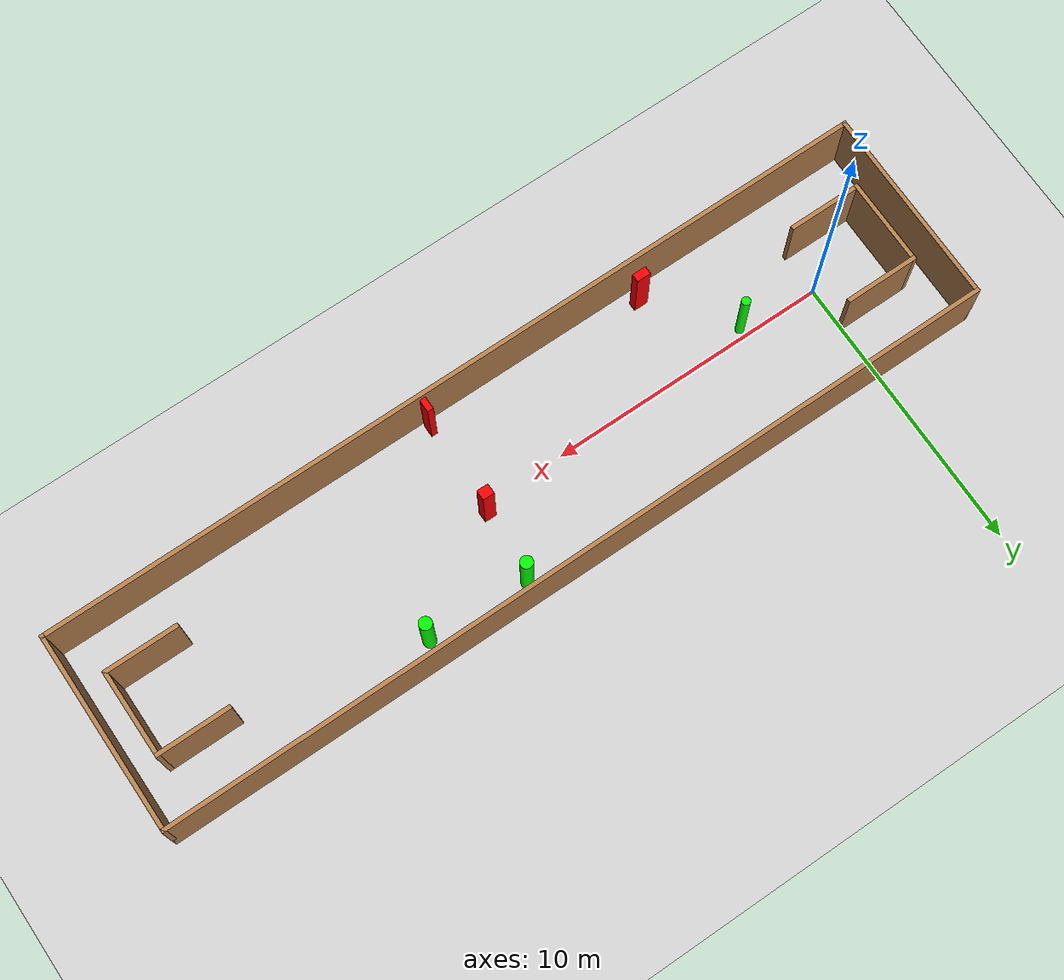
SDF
<sdf version="1.7">
 <world name="default">
  <light name="sun" type="directional">
   <pose>0 0 10 0 -0 0</pose>
   <diffuse>0.8 0.8 0.8 1</diffuse>
   <specular>0.2 0.2 0.2 1</specular>
   <attenuation>
    <range>1000</range>
    <constant>0.9</constant>
    <linear>0.01</linear>
    <quadratic>0.001</quadratic>
   </attenuation>
   <direction>-0.5 0.1 -0.9</direction>
   <spot><inner_angle>0</inner_angle><outer_angle>0</outer_angle><falloff>0</falloff></spot>
  </light>
  <model name="ground_plane">
   <static>1</static>
   <link name="link">
    <collision name="collision">
     <geometry><plane><normal>0 0 1</normal><size>100 100</size></plane></geometry>
     <surface>
      <contact><collide_bitmask>65535</collide_bitmask></contact>
      <friction><ode><mu>100</mu><mu2>50</mu2></ode></friction>
     </surface>
    </collision>
    <visual name="visual">
     <cast_shadows>0</cast_shadows>
     <geometry><plane><normal>0 0 1</normal><size>100 100</size></plane></geometry>
     <material>
      <script><uri>file://media/materials/scripts/gazebo.material</uri><name>Gazebo/Grey</name></script>
     </material>
    </visual>
   </link>
  </model>
  <gravity>0 0 -9.8</gravity>
  <magnetic_field>6e-06 2.3e-05 -4.2e-05</magnetic_field>
  <atmosphere type="adiabatic"/>
  <physics type="ode">
   <max_step_size>0.001</max_step_size>
   <real_time_factor>1</real_time_factor>
   <real_time_update_rate>1000</real_time_update_rate>
  </physics>
  <scene><ambient>0.4 0.4 0.4 1</ambient><background>0.7 0.7 0.7 1</background><shadows>1</shadows></scene>
  <spherical_coordinates>
   <surface_model>EARTH_WGS84</surface_model>
   <latitude_deg>0</latitude_deg>
   <longitude_deg>0</longitude_deg>
   <elevation>0</elevation>
   <heading_deg>0</heading_deg>
  </spherical_coordinates>
  <model name="my_base_walls">
   <link name="Wall_0">
    <collision name="Wall_0_Collision">
     <geometry><box><size>7.15 0.15 2.5</size></box></geometry>
     <pose>0 0 1.25 0 -0 0</pose>
    </collision>
    <visual name="Wall_0_Visual">
     <pose>0 0 1.25 0 -0 0</pose>
     <geometry><box><size>7.15 0.15 2.5</size></box></geometry>
     <material>
      <script><uri>file://media/materials/scripts/gazebo.material</uri><name>Gazebo/Wood</name></script>
      <ambient>1 1 1 1</ambient>
     </material>
     <meta><layer>0</layer></meta>
    </visual>
    <pose>-15 0 0 0 -0 1.5708</pose>
   </link>
   <link name="Wall_10">
    <collision name="Wall_10_Collision">
     <geometry><box><size>2.65 0.15 2.5</size></box></geometry>
     <pose>0 0 1.25 0 -0 0</pose>
    </collision>
    <visual name="Wall_10_Visual">
     <pose>0 0 1.25 0 -0 0</pose>
     <geometry><box><size>2.65 0.15 2.5</size></box></geometry>
     <material>
      <script><uri>file://media/materials/scripts/gazebo.material</uri><name>Gazebo/Wood</name></script>
      <ambient>1 1 1 1</ambient>
     </material>
     <meta><layer>0</layer></meta>
    </visual>
    <pose>-12.75 -1.5 0 0 -0 0</pose>
   </link>
   <link name="Wall_12">
    <collision name="Wall_12_Collision">
     <geometry><box><size>2.65 0.15 2.5</size></box></geometry>
     <pose>0 0 1.25 0 -0 0</pose>
    </collision>
    <visual name="Wall_12_Visual">
     <pose>0 0 1.25 0 -0 0</pose>
     <geometry><box><size>2.65 0.15 2.5</size></box></geometry>
     <material>
      <script><uri>file://media/materials/scripts/gazebo.material</uri><name>Gazebo/Wood</name></script>
      <ambient>1 1 1 1</ambient>
     </material>
     <meta><layer>0</layer></meta>
    </visual>
    <pose>-12.75 1.5 0 0 -0 0</pose>
   </link>
   <link name="Wall_14">
    <collision name="Wall_14_Collision">
     <geometry><box><size>3.15 0.15 2.5</size></box></geometry>
     <pose>0 0 1.25 0 -0 0</pose>
    </collision>
    <visual name="Wall_14_Visual">
     <pose>0 0 1.25 0 -0 0</pose>
     <geometry><box><size>3.15 0.15 2.5</size></box></geometry>
     <material>
      <script><uri>file://media/materials/scripts/gazebo.material</uri><name>Gazebo/Wood</name></script>
      <ambient>1 1 1 1</ambient>
     </material>
     <meta><layer>0</layer></meta>
    </visual>
    <pose>14 0 0 0 -0 -1.5708</pose>
   </link>
   <link name="Wall_15">
    <collision name="Wall_15_Collision">
     <geometry><box><size>2.65 0.15 2.5</size></box></geometry>
     <pose>0 0 1.25 0 -0 0</pose>
    </collision>
    <visual name="Wall_15_Visual">
     <pose>0 0 1.25 0 -0 0</pose>
     <geometry><box><size>2.65 0.15 2.5</size></box></geometry>
     <material>
      <script><uri>file://media/materials/scripts/gazebo.material</uri><name>Gazebo/Wood</name></script>
      <ambient>1 1 1 1</ambient>
     </material>
     <meta><layer>0</layer></meta>
    </visual>
    <pose>12.75 -1.5 0 0 -0 3.14159</pose>
   </link>
   <link name="Wall_17">
    <collision name="Wall_17_Collision">
     <geometry><box><size>2.65 0.15 2.5</size></box></geometry>
     <pose>0 0 1.25 0 -0 0</pose>
    </collision>
    <visual name="Wall_17_Visual">
     <pose>0 0 1.25 0 -0 0</pose>
     <geometry><box><size>2.65 0.15 2.5</size></box></geometry>
     <material>
      <script><uri>file://media/materials/scripts/gazebo.material</uri><name>Gazebo/Wood</name></script>
      <ambient>1 1 1 1</ambient>
     </material>
     <meta><layer>0</layer></meta>
    </visual>
    <pose>12.75 1.5 0 0 -0 3.14159</pose>
   </link>
   <link name="Wall_2">
    <collision name="Wall_2_Collision">
     <geometry><box><size>30.15 0.15 2.5</size></box></geometry>
     <pose>0 0 1.25 0 -0 0</pose>
    </collision>
    <visual name="Wall_2_Visual">
     <pose>0 0 1.25 0 -0 0</pose>
     <geometry><box><size>30.15 0.15 2.5</size></box></geometry>
     <material>
      <script><uri>file://media/materials/scripts/gazebo.material</uri><name>Gazebo/Wood</name></script>
      <ambient>1 1 1 1</ambient>
     </material>
     <meta><layer>0</layer></meta>
    </visual>
    <pose>-0 -3.5 0 0 -0 0</pose>
   </link>
   <link name="Wall_4">
    <collision name="Wall_4_Collision">
     <geometry><box><size>30.15 0.15 2.5</size></box></geometry>
     <pose>0 0 1.25 0 -0 0</pose>
    </collision>
    <visual name="Wall_4_Visual">
     <pose>0 0 1.25 0 -0 0</pose>
     <geometry><box><size>30.15 0.15 2.5</size></box></geometry>
     <material>
      <script><uri>file://media/materials/scripts/gazebo.material</uri><name>Gazebo/Wood</name></script>
      <ambient>1 1 1 1</ambient>
     </material>
     <meta><layer>0</layer></meta>
    </visual>
    <pose>-0 3.5 0 0 -0 0</pose>
   </link>
   <link name="Wall_6">
    <collision name="Wall_6_Collision">
     <geometry><box><size>7.15 0.15 2.5</size></box></geometry>
     <pose>0 0 1.25 0 -0 0</pose>
    </collision>
    <visual name="Wall_6_Visual">
     <pose>0 0 1.25 0 -0 0</pose>
     <geometry><box><size>7.15 0.15 2.5</size></box></geometry>
     <material>
      <script><uri>file://media/materials/scripts/gazebo.material</uri><name>Gazebo/Wood</name></script>
      <ambient>1 1 1 1</ambient>
     </material>
     <meta><layer>0</layer></meta>
    </visual>
    <pose>15 0 0 0 -0 -1.5708</pose>
   </link>
   <link name="Wall_9">
    <collision name="Wall_9_Collision">
     <geometry><box><size>3.15 0.15 2.5</size></box></geometry>
     <pose>0 0 1.25 0 -0 0</pose>
    </collision>
    <visual name="Wall_9_Visual">
     <pose>0 0 1.25 0 -0 0</pose>
     <geometry><box><size>3.15 0.15 2.5</size></box></geometry>
     <material>
      <script><uri>file://media/materials/scripts/gazebo.material</uri><name>Gazebo/Wood</name></script>
      <ambient>1 1 1 1</ambient>
     </material>
     <meta><layer>0</layer></meta>
    </visual>
    <pose>-14 0 0 0 -0 -1.5708</pose>
   </link>
   <static>1</static>
   <pose>11.5 0 0 0 -0 0</pose>
  </model>
  <model name="cylinder1">
   <static>1</static>
   <link name="link">
    <inertial>
     <mass>1</mass>
     <inertia><ixx>0.5</ixx><ixy>0</ixy><ixz>0</ixz><iyy>0.5</iyy><iyz>0</iyz><izz>1</izz></inertia>
    </inertial>
    <collision name="collision">
     <geometry><cylinder><radius>0.21831867810668695</radius><length>2.5</length></cylinder></geometry>
    </collision>
    <visual name="visual">
     <geometry><cylinder><radius>0.21831867810668695</radius><length>2.5</length></cylinder></geometry>
     <material>
      <ambient>0 1 0 1</ambient>
      <diffuse>0 1 0 1</diffuse>
      <specular>0.1 0.1 0.1 1</specular>
      <emissive>0 0 0 0</emissive>
     </material>
    </visual>
   </link>
   <pose>13.20353234570995 2.805271451781752 1.25 0 0 0</pose>
  </model>
  <model name="cylinder2">
   <static>1</static>
   <link name="link">
    <inertial>
     <mass>1</mass>
     <inertia><ixx>0.5</ixx><ixy>0</ixy><ixz>0</ixz><iyy>0.5</iyy><iyz>0</iyz><izz>1</izz></inertia>
    </inertial>
    <collision name="collision">
     <geometry><cylinder><radius>0.22377126936059105</radius><length>2.5</length></cylinder></geometry>
    </collision>
    <visual name="visual">
     <geometry><cylinder><radius>0.22377126936059105</radius><length>2.5</length></cylinder></geometry>
     <material>
      <ambient>0 1 0 1</ambient>
      <diffuse>0 1 0 1</diffuse>
      <specular>0.1 0.1 0.1 1</specular>
      <emissive>0 0 0 0</emissive>
     </material>
    </visual>
   </link>
   <pose>16.781918335507214 2.6581572221659844 1.25 0 0 0</pose>
  </model>
  <model name="cylinder3">
   <static>1</static>
   <link name="link">
    <inertial>
     <mass>1</mass>
     <inertia><ixx>0.5</ixx><ixy>0</ixy><ixz>0</ixz><iyy>0.5</iyy><iyz>0</iyz><izz>1</izz></inertia>
    </inertial>
    <collision name="collision">
     <geometry><cylinder><radius>0.1510784424066588</radius><length>2.5</length></cylinder></geometry>
    </collision>
    <visual name="visual">
     <geometry><cylinder><radius>0.1510784424066588</radius><length>2.5</length></cylinder></geometry>
     <material>
      <ambient>0 1 0 1</ambient>
      <diffuse>0 1 0 1</diffuse>
      <specular>0.1 0.1 0.1 1</specular>
      <emissive>0 0 0 0</emissive>
     </material>
    </visual>
   </link>
   <pose>2.7368477375279543 -0.30949955245091676 1.25 0 0 0</pose>
  </model>
  <model name="box1">
   <static>1</static>
   <link name="link">
    <inertial>
     <mass>1</mass>
     <inertia><ixx>0.083</ixx><ixy>0</ixy><ixz>0</ixz><iyy>0.083</iyy><iyz>0</iyz><izz>0.083</izz></inertia>
    </inertial>
    <collision name="collision">
     <geometry><box><size>0.41757829254462375 0.359864293174784 2.5</size></box></geometry>
    </collision>
    <visual name="visual">
     <geometry><box><size>0.41757829254462375 0.359864293174784 2.5</size></box></geometry>
     <material>
      <ambient>1 0 0 1</ambient>
      <diffuse>1 0 0 1</diffuse>
      <specular>0.1 0.1 0.1 1</specular>
      <emissive>0 0 0 0</emissive>
     </material>
    </visual>
    <sensor name="my_contact" type="contact">
     <contact><collision>box_collision</collision><topic>__default_topic__</topic></contact>
    </sensor>
   </link>
   <pose>12.999486517949904 0.26162870288551865 1.25 0 0 0</pose>
  </model>
  <model name="box2">
   <static>1</static>
   <link name="link">
    <inertial>
     <mass>1</mass>
     <inertia><ixx>0.083</ixx><ixy>0</ixy><ixz>0</ixz><iyy>0.083</iyy><iyz>0</iyz><izz>0.083</izz></inertia>
    </inertial>
    <collision name="collision">
     <geometry><box><size>0.5044529606871095 0.29078019609121486 2.5</size></box></geometry>
    </collision>
    <visual name="visual">
     <geometry><box><size>0.5044529606871095 0.29078019609121486 2.5</size></box></geometry>
     <material>
      <ambient>1 0 0 1</ambient>
      <diffuse>1 0 0 1</diffuse>
      <specular>0.1 0.1 0.1 1</specular>
      <emissive>0 0 0 0</emissive>
     </material>
    </visual>
    <sensor name="my_contact" type="contact">
     <contact><collision>box_collision</collision><topic>__default_topic__</topic></contact>
    </sensor>
   </link>
   <pose>4.9332616491051 -2.9137268065789934 1.25 0 0 0</pose>
  </model>
  <model name="box3">
   <static>1</static>
   <link name="link">
    <inertial>
     <mass>1</mass>
     <inertia><ixx>0.083</ixx><ixy>0</ixy><ixz>0</ixz><iyy>0.083</iyy><iyz>0</iyz><izz>0.083</izz></inertia>
    </inertial>
    <collision name="collision">
     <geometry><box><size>0.21456815337338858 0.455186321576617 2.5</size></box></geometry>
    </collision>
    <visual name="visual">
     <geometry><box><size>0.21456815337338858 0.455186321576617 2.5</size></box></geometry>
     <material>
      <ambient>1 0 0 1</ambient>
      <diffuse>1 0 0 1</diffuse>
      <specular>0.1 0.1 0.1 1</specular>
      <emissive>0 0 0 0</emissive>
     </material>
    </visual>
    <sensor name="my_contact" type="contact">
     <contact><collision>box_collision</collision><topic>__default_topic__</topic></contact>
    </sensor>
   </link>
   <pose>12.934737101583721 -3.1183741822362943 1.25 0 0 0</pose>
  </model>
 </world>
</sdf>
